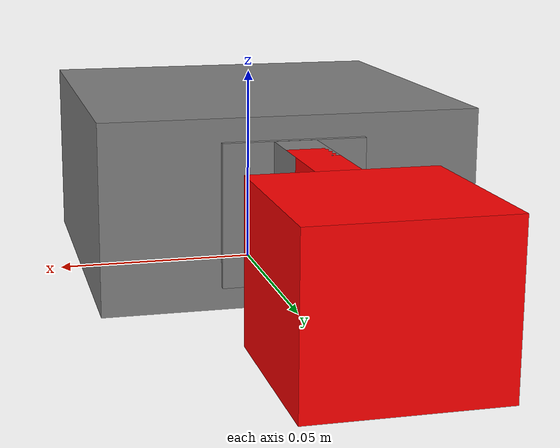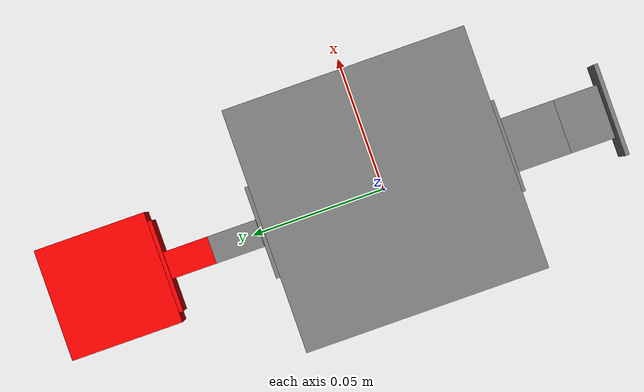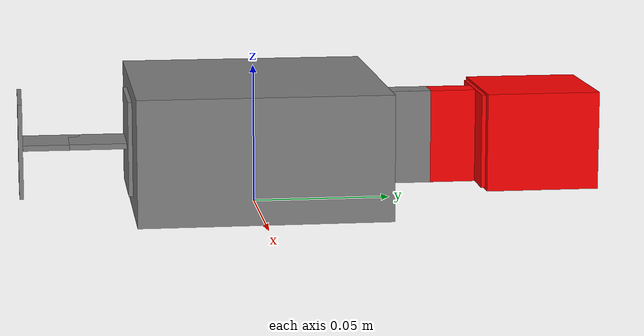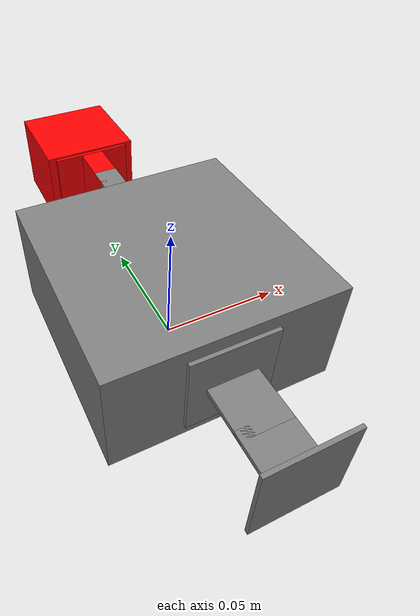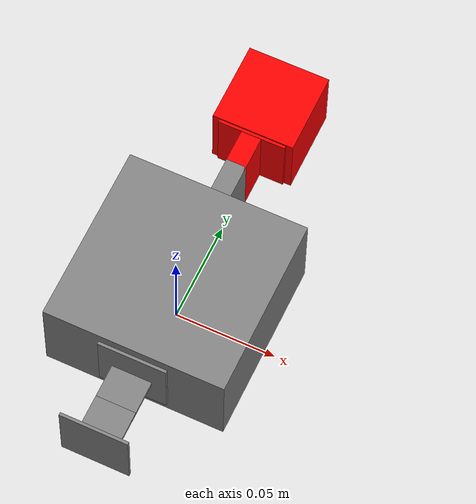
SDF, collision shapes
<?xml version="1.0" encoding="UTF-8"?>
<sdf version="1.5">
  <model name="test_bot">
    <pose>0.000000e+00 0.000000e+00 2.325000e-02 0.000000e+00 -0.000000e+00 0.000000e+00</pose>
    <link name="link_component_Core__box">
      <pose>0.000000e+00 0.000000e+00 0.000000e+00 0.000000e+00 -0.000000e+00 0.000000e+00</pose>
      <visual name="component_Core__box_visual">
        <pose>0.000000e+00 0.000000e+00 0.000000e+00 0.000000e+00 -0.000000e+00 0.000000e+00</pose>
        <material>
          <ambient>0.50 0.50 0.50 1.00</ambient>
          <diffuse>0.50 0.50 0.50 1.00</diffuse>
          <specular>0.1 0.1 0.1 1.00</specular>
        </material>
        <geometry>
          <mesh>
            <uri>model://tol_meshes/meshes/CoreComponent.dae</uri>
          </mesh>
        </geometry>
      </visual>
      <collision name="component_Core__box_collision">
        <pose>0.000000e+00 0.000000e+00 0.000000e+00 0.000000e+00 -0.000000e+00 0.000000e+00</pose>
        <surface>
          <contact>
            <ode>
              <soft_cfm>1.000000e-02</soft_cfm>
              <soft_erp>2.000000e-01</soft_erp>
            </ode>
            <bullet>
              <soft_cfm>1.000000e-02</soft_cfm>
              <soft_erp>2.000000e-01</soft_erp>
            </bullet>
          </contact>
          <friction>
            <ode>
              <mu>1.000000e+00</mu>
              <mu2>1.000000e+00</mu2>
              <slip1>1.000000e-02</slip1>
              <slip2>1.000000e-02</slip2>
            </ode>
            <bullet>
              <friction>1.000000e+00</friction>
              <friction2>1.000000e+00</friction2>
            </bullet>
          </friction>
        </surface>
        <geometry>
          <box>
            <size>9.000000e-02 9.000000e-02 4.500000e-02</size>
          </box>
        </geometry>
      </collision>
      <sensor type="imu" name="Core-imu_sensor">
        <pose>0.000000e+00 0.000000e+00 0.000000e+00 0.000000e+00 -0.000000e+00 0.000000e+00</pose>
        <update_rate>1.000000e+01</update_rate>
        <always_on>1</always_on>
      </sensor>
      <collision name="component_PassiveHinge__slot_a_collision">
        <pose>1.665335e-19 -4.575000e-02 4.163336e-20 1.570796e+00 -5.551115e-17 -1.570796e+00</pose>
        <surface>
          <contact>
            <ode>
              <soft_cfm>1.000000e-02</soft_cfm>
              <soft_erp>2.000000e-01</soft_erp>
            </ode>
            <bullet>
              <soft_cfm>1.000000e-02</soft_cfm>
              <soft_erp>2.000000e-01</soft_erp>
            </bullet>
          </contact>
          <friction>
            <ode>
              <mu>1.000000e+00</mu>
              <mu2>1.000000e+00</mu2>
              <slip1>1.000000e-02</slip1>
              <slip2>1.000000e-02</slip2>
            </ode>
            <bullet>
              <friction>1.000000e+00</friction>
              <friction2>1.000000e+00</friction2>
            </bullet>
          </friction>
        </surface>
        <geometry>
          <box>
            <size>1.500000e-03 3.400000e-02 3.400000e-02</size>
          </box>
        </geometry>
      </collision>
      <visual name="component_PassiveHinge__conn_a_conn_a_visual">
        <pose>2.256528e-18 -5.610000e-02 8.243406e-19 1.570796e+00 -5.551115e-17 -1.570796e+00</pose>
        <material>
          <ambient>0.50 0.50 0.50 1.00</ambient>
          <diffuse>0.50 0.50 0.50 1.00</diffuse>
          <specular>0.1 0.1 0.1 1.00</specular>
        </material>
        <geometry>
          <mesh>
            <uri>model://tol_meshes/meshes/PassiveHinge.stl</uri>
          </mesh>
        </geometry>
      </visual>
      <collision name="component_PassiveHinge__conn_a_collision">
        <pose>2.631229e-18 -5.685000e-02 6.578071e-19 1.570796e+00 -5.551115e-17 -1.570796e+00</pose>
        <surface>
          <contact>
            <ode>
              <soft_cfm>1.000000e-02</soft_cfm>
              <soft_erp>2.000000e-01</soft_erp>
            </ode>
            <bullet>
              <soft_cfm>1.000000e-02</soft_cfm>
              <soft_erp>2.000000e-01</soft_erp>
            </bullet>
          </contact>
          <friction>
            <ode>
              <mu>1.000000e+00</mu>
              <mu2>1.000000e+00</mu2>
              <slip1>1.000000e-02</slip1>
              <slip2>1.000000e-02</slip2>
            </ode>
            <bullet>
              <friction>1.000000e+00</friction>
              <friction2>1.000000e+00</friction2>
            </bullet>
          </friction>
        </surface>
        <geometry>
          <box>
            <size>2.050000e-02 2.000000e-03 2.000000e-02</size>
          </box>
        </geometry>
      </collision>
      <visual name="component_ActiveHinge__root_visual">
        <pose>1.665335e-19 4.575000e-02 -4.163336e-20 1.570796e+00 5.551115e-17 1.570796e+00</pose>
        <material>
          <ambient>1.00 0.00 0.00 1.00</ambient>
          <diffuse>1.00 0.00 0.00 1.00</diffuse>
          <specular>0.1 0.1 0.1 1.00</specular>
        </material>
        <geometry>
          <box>
            <size>1.500000e-03 3.400000e-02 3.400000e-02</size>
          </box>
        </geometry>
      </visual>
      <collision name="component_ActiveHinge__root_collision">
        <pose>1.665335e-19 4.575000e-02 -4.163336e-20 1.570796e+00 5.551115e-17 1.570796e+00</pose>
        <surface>
          <contact>
            <ode>
              <soft_cfm>1.000000e-02</soft_cfm>
              <soft_erp>2.000000e-01</soft_erp>
            </ode>
            <bullet>
              <soft_cfm>1.000000e-02</soft_cfm>
              <soft_erp>2.000000e-01</soft_erp>
            </bullet>
          </contact>
          <friction>
            <ode>
              <mu>1.000000e+00</mu>
              <mu2>1.000000e+00</mu2>
              <slip1>1.000000e-02</slip1>
              <slip2>1.000000e-02</slip2>
            </ode>
            <bullet>
              <friction>1.000000e+00</friction>
              <friction2>1.000000e+00</friction2>
            </bullet>
          </friction>
        </surface>
        <geometry>
          <box>
            <size>1.500000e-03 3.400000e-02 3.400000e-02</size>
          </box>
        </geometry>
      </collision>
      <visual name="component_ActiveHinge__frame_frame_visual">
        <pose>2.353673e-18 5.560000e-02 -5.884182e-19 1.570796e+00 5.551115e-17 1.570796e+00</pose>
        <material>
          <ambient>1.00 0.00 0.00 1.00</ambient>
          <diffuse>1.00 0.00 0.00 1.00</diffuse>
          <specular>0.1 0.1 0.1 1.00</specular>
        </material>
        <geometry>
          <mesh>
            <uri>model://tol_meshes/meshes/ActiveHinge_Frame.dae</uri>
          </mesh>
        </geometry>
      </visual>
      <collision name="component_ActiveHinge__frame_collision">
        <pose>2.353673e-18 5.560000e-02 -5.884182e-19 1.570796e+00 5.551115e-17 1.570796e+00</pose>
        <surface>
          <contact>
            <ode>
              <soft_cfm>1.000000e-02</soft_cfm>
              <soft_erp>2.000000e-01</soft_erp>
            </ode>
            <bullet>
              <soft_cfm>1.000000e-02</soft_cfm>
              <soft_erp>2.000000e-01</soft_erp>
            </bullet>
          </contact>
          <friction>
            <ode>
              <mu>1.000000e+00</mu>
              <mu2>1.000000e+00</mu2>
              <slip1>1.000000e-02</slip1>
              <slip2>1.000000e-02</slip2>
            </ode>
            <bullet>
              <friction>1.000000e+00</friction>
              <friction2>1.000000e+00</friction2>
            </bullet>
          </friction>
        </surface>
        <geometry>
          <box>
            <size>1.800000e-02 3.400000e-02 1.000000e-02</size>
          </box>
        </geometry>
      </collision>
      <inertial>
        <mass>1.012000e-01</mass>
        <inertia>
          <ixx>1.027687e-04</ixx>
          <ixy>2.218130e-22</ixy>
          <ixz>1.729089e-22</ixz>
          <iyy>7.783077e-05</iyy>
          <iyz>3.149203e-22</iyz>
          <izz>1.482586e-04</izz>
        </inertia>
      </inertial>
      <self_collide>True</self_collide>
    </link>
    <link name="link_component_PassiveHinge__conn_b">
      <pose>6.294965e-18 -7.335000e-02 1.573741e-18 1.570796e+00 -5.551115e-17 -1.570796e+00</pose>
      <visual name="component_PassiveHinge__conn_b_conn_b_visual">
        <pose>0.000000e+00 0.000000e+00 0.000000e+00 3.141593e+00 1.110223e-16 3.141593e+00</pose>
        <material>
          <ambient>0.50 0.50 0.50 1.00</ambient>
          <diffuse>0.50 0.50 0.50 1.00</diffuse>
          <specular>0.1 0.1 0.1 1.00</specular>
        </material>
        <geometry>
          <mesh>
            <uri>model://tol_meshes/meshes/PassiveHinge.stl</uri>
          </mesh>
        </geometry>
      </visual>
      <collision name="component_PassiveHinge__conn_b_collision">
        <pose>0.000000e+00 0.000000e+00 0.000000e+00 -2.220446e-16 0.000000e+00 0.000000e+00</pose>
        <surface>
          <contact>
            <ode>
              <soft_cfm>1.000000e-02</soft_cfm>
              <soft_erp>2.000000e-01</soft_erp>
            </ode>
            <bullet>
              <soft_cfm>1.000000e-02</soft_cfm>
              <soft_erp>2.000000e-01</soft_erp>
            </bullet>
          </contact>
          <friction>
            <ode>
              <mu>1.000000e+00</mu>
              <mu2>1.000000e+00</mu2>
              <slip1>1.000000e-02</slip1>
              <slip2>1.000000e-02</slip2>
            </ode>
            <bullet>
              <friction>1.000000e+00</friction>
              <friction2>1.000000e+00</friction2>
            </bullet>
          </friction>
        </surface>
        <geometry>
          <box>
            <size>2.050000e-02 2.000000e-03 2.000000e-02</size>
          </box>
        </geometry>
      </collision>
      <collision name="component_PassiveHinge__slot_b_collision">
        <pose>1.110000e-02 -3.080869e-18 -3.080869e-18 -2.220446e-16 0.000000e+00 0.000000e+00</pose>
        <surface>
          <contact>
            <ode>
              <soft_cfm>1.000000e-02</soft_cfm>
              <soft_erp>2.000000e-01</soft_erp>
            </ode>
            <bullet>
              <soft_cfm>1.000000e-02</soft_cfm>
              <soft_erp>2.000000e-01</soft_erp>
            </bullet>
          </contact>
          <friction>
            <ode>
              <mu>1.000000e+00</mu>
              <mu2>1.000000e+00</mu2>
              <slip1>1.000000e-02</slip1>
              <slip2>1.000000e-02</slip2>
            </ode>
            <bullet>
              <friction>1.000000e+00</friction>
              <friction2>1.000000e+00</friction2>
            </bullet>
          </friction>
        </surface>
        <geometry>
          <box>
            <size>1.500000e-03 3.400000e-02 3.400000e-02</size>
          </box>
        </geometry>
      </collision>
      <inertial>
        <mass>3.000000e-03</mass>
        <inertia>
          <ixx>4.190000e-07</ixx>
          <ixy>6.839529e-23</ixy>
          <ixz>6.839529e-23</ixz>
          <iyy>5.078158e-07</iyy>
          <iyz>-7.327472e-24</iyz>
          <izz>4.748158e-07</izz>
        </inertia>
      </inertial>
      <self_collide>True</self_collide>
    </link>
    <joint type="revolute" name="joint_link_component_Core__box_link_component_PassiveHinge__conn_b">
      <pose>-8.250000e-03 0.000000e+00 0.000000e+00 -1.110223e-16 0.000000e+00 0.000000e+00</pose>
      <parent>link_component_Core__box</parent>
      <child>link_component_PassiveHinge__conn_b</child>
      <axis>
        <xyz>0.000000e+00 0.000000e+00 1.000000e+00</xyz>
        <use_parent_model_frame>0</use_parent_model_frame>
        <limit>
          <lower>-7.853982e-01</lower>
          <upper>7.853982e-01</upper>
        </limit>
      </axis>
    </joint>
    <link name="link_component_ActiveHinge__servo">
      <pose>5.295764e-18 6.885000e-02 -1.323941e-18 1.570796e+00 5.551115e-17 1.570796e+00</pose>
      <visual name="component_ActiveHinge__servo_servo_visual">
        <pose>0.000000e+00 0.000000e+00 0.000000e+00 -2.220446e-16 0.000000e+00 0.000000e+00</pose>
        <material>
          <ambient>1.00 0.00 0.00 1.00</ambient>
          <diffuse>1.00 0.00 0.00 1.00</diffuse>
          <specular>0.1 0.1 0.1 1.00</specular>
        </material>
        <geometry>
          <mesh>
            <uri>model://tol_meshes/meshes/ActiveCardanHinge_Servo_Holder.dae</uri>
          </mesh>
        </geometry>
      </visual>
      <collision name="component_ActiveHinge__servo_collision">
        <pose>0.000000e+00 0.000000e+00 0.000000e+00 -2.220446e-16 0.000000e+00 0.000000e+00</pose>
        <surface>
          <contact>
            <ode>
              <soft_cfm>1.000000e-02</soft_cfm>
              <soft_erp>2.000000e-01</soft_erp>
            </ode>
            <bullet>
              <soft_cfm>1.000000e-02</soft_cfm>
              <soft_erp>2.000000e-01</soft_erp>
            </bullet>
          </contact>
          <friction>
            <ode>
              <mu>1.000000e+00</mu>
              <mu2>1.000000e+00</mu2>
              <slip1>1.000000e-02</slip1>
              <slip2>1.000000e-02</slip2>
            </ode>
            <bullet>
              <friction>1.000000e+00</friction>
              <friction2>1.000000e+00</friction2>
            </bullet>
          </friction>
        </surface>
        <geometry>
          <box>
            <size>2.450000e-02 3.400000e-02 1.000000e-02</size>
          </box>
        </geometry>
      </collision>
      <collision name="component_ActiveHinge__tail_collision">
        <pose>1.310000e-02 3.635980e-18 3.635980e-18 -2.220446e-16 0.000000e+00 0.000000e+00</pose>
        <surface>
          <contact>
            <ode>
              <soft_cfm>1.000000e-02</soft_cfm>
              <soft_erp>2.000000e-01</soft_erp>
            </ode>
            <bullet>
              <soft_cfm>1.000000e-02</soft_cfm>
              <soft_erp>2.000000e-01</soft_erp>
            </bullet>
          </contact>
          <friction>
            <ode>
              <mu>1.000000e+00</mu>
              <mu2>1.000000e+00</mu2>
              <slip1>1.000000e-02</slip1>
              <slip2>1.000000e-02</slip2>
            </ode>
            <bullet>
              <friction>1.000000e+00</friction>
              <friction2>1.000000e+00</friction2>
            </bullet>
          </friction>
        </surface>
        <geometry>
          <box>
            <size>1.500000e-03 3.400000e-02 3.400000e-02</size>
          </box>
        </geometry>
      </collision>
      <visual name="component_Brick__box_visual">
        <pose>3.435000e-02 2.071954e-17 2.515596e-17 -1.570796e+00 -1.570796e+00 0.000000e+00</pose>
        <material>
          <ambient>0.50 0.50 0.50 1.00</ambient>
          <diffuse>0.50 0.50 0.50 1.00</diffuse>
          <specular>0.1 0.1 0.1 1.00</specular>
        </material>
        <geometry>
          <mesh>
            <uri>model://tol_meshes/meshes/FixedBrick.dae</uri>
          </mesh>
        </geometry>
      </visual>
      <collision name="component_Brick__box_collision">
        <pose>3.435000e-02 2.071954e-17 2.515596e-17 -1.570796e+00 -1.570796e+00 0.000000e+00</pose>
        <surface>
          <contact>
            <ode>
              <soft_cfm>1.000000e-02</soft_cfm>
              <soft_erp>2.000000e-01</soft_erp>
            </ode>
            <bullet>
              <soft_cfm>1.000000e-02</soft_cfm>
              <soft_erp>2.000000e-01</soft_erp>
            </bullet>
          </contact>
          <friction>
            <ode>
              <mu>1.000000e+00</mu>
              <mu2>1.000000e+00</mu2>
              <slip1>1.000000e-02</slip1>
              <slip2>1.000000e-02</slip2>
            </ode>
            <bullet>
              <friction>1.000000e+00</friction>
              <friction2>1.000000e+00</friction2>
            </bullet>
          </friction>
        </surface>
        <geometry>
          <box>
            <size>4.100000e-02 4.100000e-02 3.550000e-02</size>
          </box>
        </geometry>
      </collision>
      <inertial>
        <mass>2.620000e-02</mass>
        <inertia>
          <ixx>4.790729e-06</ixx>
          <ixy>-7.355067e-21</ixy>
          <ixz>-8.869750e-21</ixz>
          <iyy>1.729501e-05</iyy>
          <iyz>5.328335e-22</iyz>
          <izz>1.772938e-05</izz>
        </inertia>
      </inertial>
      <self_collide>True</self_collide>
    </link>
    <joint type="revolute" name="joint_link_component_ActiveHinge__servo_link_component_Core__box">
      <pose>3.463896e-18 6.060000e-02 -8.659740e-19 1.570796e+00 5.551115e-17 1.570796e+00</pose>
      <parent>link_component_ActiveHinge__servo</parent>
      <child>link_component_Core__box</child>
      <axis>
        <xyz>0.000000e+00 1.000000e+00 0.000000e+00</xyz>
        <use_parent_model_frame>0</use_parent_model_frame>
        <limit>
          <lower>-7.853982e-01</lower>
          <upper>7.853982e-01</upper>
          <effort>1.765800e-01</effort>
          <velocity>5.235988e+00</velocity>
        </limit>
      </axis>
    </joint>
    <plugin name="robot_controller" filename="libRobotControlPlugin.so">
      <rv:robot_config xmlns:rv="https://github.com/ElteHupkes/revolve">
        <rv:update_rate>1.000000e+01</rv:update_rate>
        <rv:brain>
          <rv:neuron layer="input" type="Input" id="Core-in-5" part_id="Core" />
          <rv:neuron layer="input" type="Input" id="Core-in-4" part_id="Core" />
          <rv:neuron layer="input" type="Input" id="Core-in-1" part_id="Core" />
          <rv:neuron layer="input" type="Input" id="Core-in-0" part_id="Core" />
          <rv:neuron layer="input" type="Input" id="Core-in-3" part_id="Core" />
          <rv:neuron layer="input" type="Input" id="Core-in-2" part_id="Core" />
          <rv:neuron layer="output" type="Oscillator" id="ActiveHinge-out-0" part_id="ActiveHinge">
            <rv:period>0.1000000e+00</rv:period>
            <rv:amplitude>2.000000e+00</rv:amplitude>
            <rv:phase_offset>0.000000e+00</rv:phase_offset>
          </rv:neuron>
        </rv:brain>
        <rv:sensor link="link_component_Core__box" sensor="Core-imu_sensor" id="Core__Core-imu_sensor" part_id="Core" type="imu" />
        <rv:motor joint="joint_link_component_ActiveHinge__servo_link_component_Core__box" type="position" id="ActiveHinge__rotate" part_id="ActiveHinge">
          <rv:pid>
            <rv:p>9.000000e-01</rv:p>
            <rv:i>0.000000e+00</rv:i>
            <rv:d>0.000000e+00</rv:d>
            <rv:i_max>0.000000e+00</rv:i_max>
            <rv:i_min>0.000000e+00</rv:i_min>
          </rv:pid>
        </rv:motor>
      </rv:robot_config>
    </plugin>
    <static>0</static>
  </model>
</sdf>
